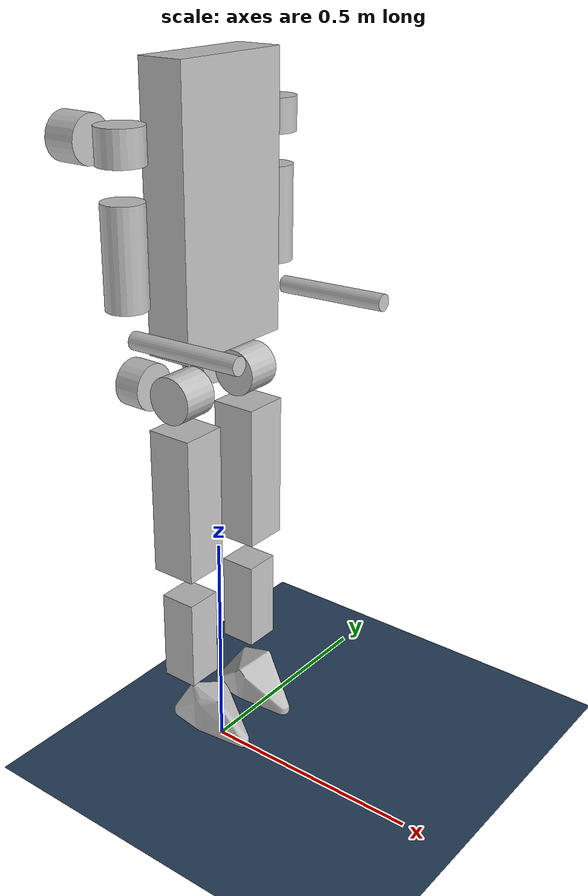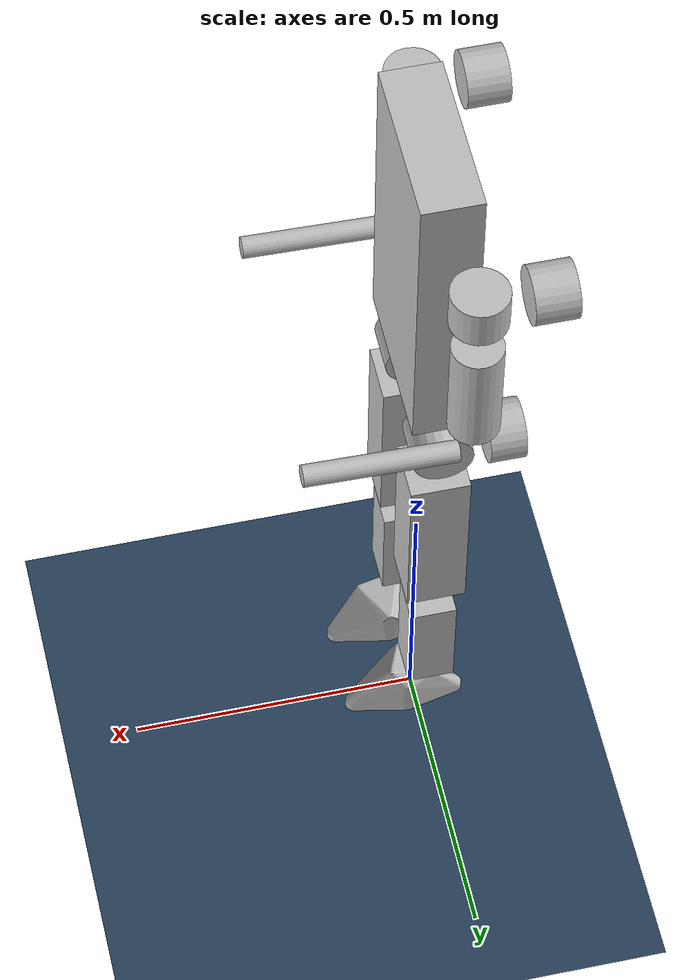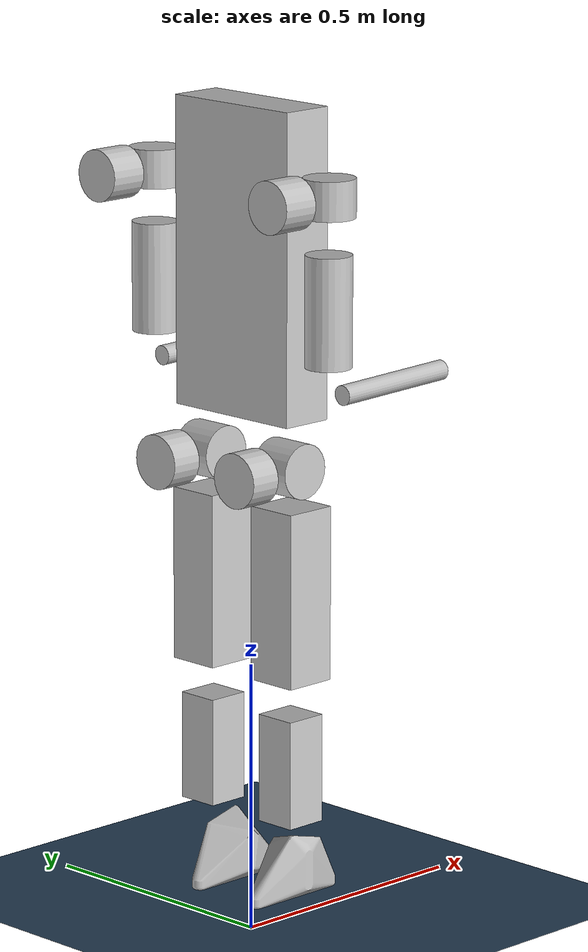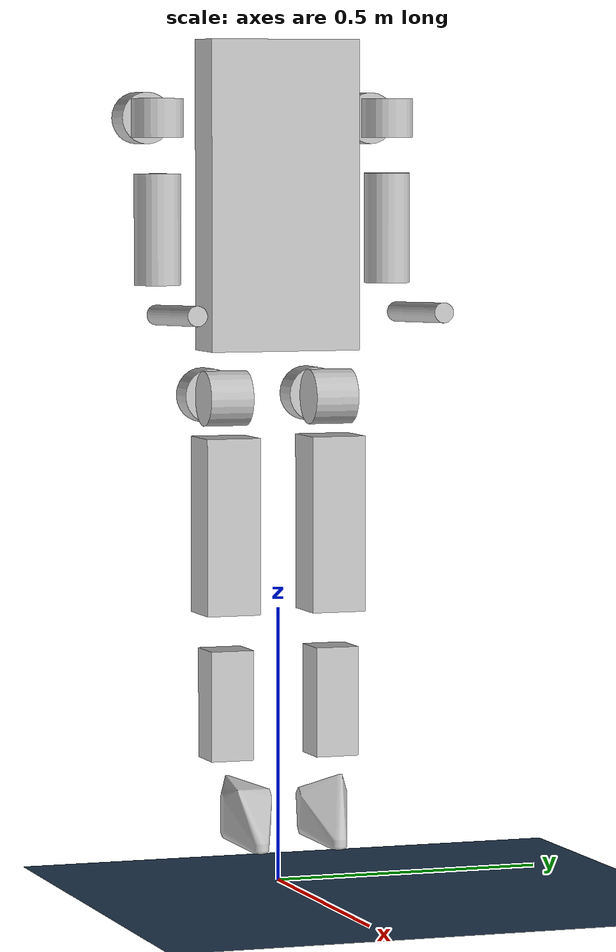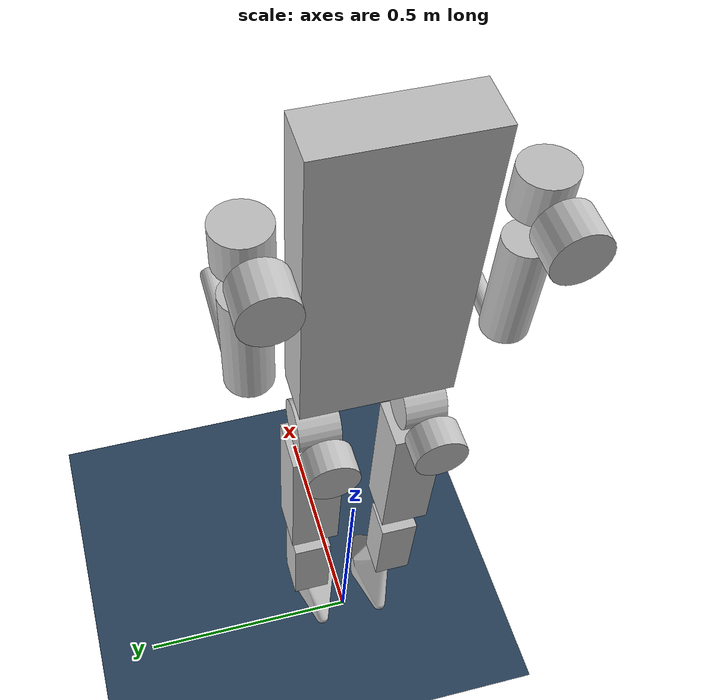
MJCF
<mujoco model="bhr8_fc2">
  <compiler angle="radian" meshdir="meshes/" autolimits="true"/>

    <asset>
    <!--设置地板-->
    <texture name="grid" type="2d" builtin="checker" width="512" height="512" rgb1=".1 .2 .3"
      rgb2=".2 .3 .4" />
    <material name="grid" texture="grid" texrepeat="1 1" texuniform="true" reflectance=".2" />
    <mesh name="rfoot" file="rfoot.stl"/>
    <mesh name="lfoot" file="lfoot.stl"/>
  </asset>

  <option timestep="0.001" integrator="RK4">
    <flag sensornoise="enable" />
  </option>
  <option impratio = "0.6"/>

  <visual>
    <map force="0.1" zfar="30" />
    <rgba haze="0.15 0.25 0.35 1" />
    <global offwidth="2560" offheight="1440" elevation="-20" azimuth="120" />
  </visual>

  <worldbody>
    <light name="main_light" diffuse="2 2 2" specular="0.5 0.5 0.5" pos="0 0 40" dir="0 0 -1"
      castshadow="true" />
    <!--辅助光源,四面八方-->
    <light name="aux_light1" diffuse=".8 .8 .8" pos=" 10 0 1" dir="-1 0 0" castshadow="false" />
    <light name="aux_light2" diffuse=".8 .8 .8" pos="-10 0 1" dir=" 1 0 0" castshadow="false" />
    <light name="aux_light3" diffuse=".8 .8 .8" pos="0  10 1" dir="0 -1 0" castshadow="false" />
    <light name="aux_light4" diffuse=".8 .8 .8" pos="0 -10 1" dir="0  1 0" castshadow="false" />
    <!--地板-->
    <geom name="floor" type="plane" size="0 0 0.05" material="grid"/>
    <body name="torso" pos="0 0 1">
      <freejoint name="root"/>
        <inertial pos="-0.01 0 0.303214317947705" quat="1 0 0 0" mass="23.1" diaginertia="0.71 0.60 0.24" />
      <site name="imu_site"  size="0.02" pos="0.0000000 0.00000000 0.0"/>
      <geom size="0.05 0.14 0.28" pos="0 0 0.25" type="box" rgba="0.752941 0.752941 0.752941 1"/>
      <geom size="0.047 0.035" pos="-0.13625 -0.21476 0.389" quat="0.707388 0 0.706825 0" type="cylinder" rgba="0.752941 0.752941 0.752941 1"/>
      <geom size="0.047 0.035" pos="-0.02525 -0.219 0.389" type="cylinder" rgba="0.752941 0.752941 0.752941 1"/>
      <geom size="0.042 0.1" pos="-0.02625 -0.219 0.189" type="cylinder" rgba="0.752941 0.752941 0.752941 1"/>
      <geom size="0.018 0.125" pos="0.123686 -0.229 0.0401399" quat="0.696707 0 -0.717356 0" type="cylinder" rgba="0.752941 0.752941 0.752941 1"/>
      <geom size="0.047 0.035" pos="-0.13625 0.21476 0.389" quat="0.707388 0 0.706825 0" type="cylinder" rgba="0.752941 0.752941 0.752941 1"/>
      <geom size="0.047 0.035" pos="-0.02525 0.219 0.389" type="cylinder" rgba="0.752941 0.752941 0.752941 1"/>
      <geom size="0.042 0.1" pos="-0.02625 0.219 0.189" type="cylinder" rgba="0.752941 0.752941 0.752941 1"/>
      <geom size="0.018 0.125" pos="0.123686 0.229 0.0401399" quat="0.696707 0 -0.717356 0" type="cylinder" rgba="0.752941 0.752941 0.752941 1"/>
      <body name="rhip1" pos="0 -0.1 0.02324">
        <inertial pos="-0.078509 0 -0.118031" quat="0.312936 0.634303 0.633788 0.313119" mass="2.38958" diaginertia="0.011987 0.0111943 0.00318774"/>
        <joint name="rhipYaw" pos="0 0 0" axis="0 0 1" range="-3.14 3.14"/>
        <geom size="0.05 0.03" pos="-0.11 0 -0.14" quat="0.707388 0 0.706825 0" type="cylinder" rgba="0.752941 0.752941 0.752941 1"/>
        <body name="rhip2" pos="-0.054 0 -0.13924">
          <inertial pos="0.051206 -0.00273 -0.000288" quat="-0.0508471 0.718896 0.0506336 0.691404" mass="2.50709" diaginertia="0.0040419 0.00361648 0.00344663"/>
          <joint name="rhipRoll" pos="0 0 0" axis="1 0 0" range="-3.14 3.14"/>
          <geom size="0.05 0.04" pos="0.05 0 0" quat="0.707388 0.706825 0 0" type="cylinder" rgba="0.752941 0.752941 0.752941 1"/>
          <body name="rthigh" pos="0.055 -0.0001 0">
            <inertial pos="0.005701 -0.002335 -0.170006" quat="0.999478 -0.00792791 -0.00348956 0.0311153" mass="3.09646" diaginertia="0.0430693 0.0409464 0.00582637"/>
            <joint name="rhipPitch" pos="0 0 0" axis="0 1 0" range="-3.14 3.14"/>
            <geom size="0.05 0.05 0.16" pos="0 0 -0.23" type="box" rgba="0.752941 0.752941 0.752941 1"/>
            <body name="rcalf" pos="0 0 -0.375">
              <inertial pos="0.003761 0 -0.143175" quat="0.99988 -0.000702889 -0.0153326 0.00193635" mass="1.91427" diaginertia="0.0176306 0.017018 0.00210037"/>
              <joint name="rknee" pos="0 0 0" axis="0 1 0" range="-3.14 3.14"/>
              <geom size="0.04 0.04 0.1" pos="0 0 -0.18" type="box" rgba="0.752941 0.752941 0.752941 1"/>
              <body name="rankle" pos="0 0 -0.35">
                <inertial pos="-0.025377 0.000124 0.003585" quat="0.513827 0.48578 0.48578 0.513827" mass="0.139581" diaginertia="0.000117 0.000111225 3.97754e-05"/>
                <joint name="rankle1" pos="0 0 0" axis="0 1 0" range="-3.14 3.14"/>
                <body name="rfoot" pos="0.031 0 0">
                  <inertial pos="-0.016884 0.000166 -0.054343" quat="-0.00139322 0.658253 -0.0050555 0.752779" mass="1.20445" diaginertia="0.00652476 0.00619614 0.0011981"/>
                  <joint name="rankle2" pos="0 0 0" axis="1 0 0" range="-3.14 3.14"/>
                  <geom type="mesh" rgba="0.752941 0.752941 0.752941 1" mesh="rfoot"/>
                  <site name="site_right_forcesensor" pos="0 0 0" />
                </body>
              </body>
            </body>
          </body>
        </body>
      </body>
      <body name="lhip1" pos="0 0.1 0.02324">
        <inertial pos="-0.078509 0 -0.118031" quat="0.312936 0.634303 0.633788 0.313119" mass="2.38958" diaginertia="0.011987 0.0111943 0.00318774"/>
        <joint name="lhipYaw" pos="0 0 0" axis="0 0 1" range="-3.14 3.14"/>
        <geom size="0.05 0.03" pos="-0.11 0 -0.14" quat="0.707388 0 0.706825 0" type="cylinder" rgba="0.752941 0.752941 0.752941 1"/>
        <body name="lhip2" pos="-0.054 0 -0.13924">
          <inertial pos="0.051206 0.002733 -0.00028" quat="0.0501181 0.718914 -0.051553 0.691371" mass="2.50722" diaginertia="0.00404191 0.00361648 0.00344661"/>
          <joint name="lhipRoll" pos="0 0 0" axis="1 0 0" range="-3.14 3.14"/>
          <geom size="0.05 0.04" pos="0.05 0 0" quat="0.707388 0.706825 0 0" type="cylinder" rgba="0.752941 0.752941 0.752941 1"/>
          <body name="lthigh" pos="0.055 0 0">
            <inertial pos="0.004804 0.002343 -0.169952" quat="0.99957 0.00788906 -0.00488581 -0.0278185" mass="3.09646" diaginertia="0.0430607 0.0408405 0.00572671"/>
            <joint name="lhipPitch" pos="0 0 0" axis="0 1 0" range="-3.14 3.14"/>
            <geom size="0.05 0.05 0.16" pos="0 0 -0.23" type="box" rgba="0.752941 0.752941 0.752941 1"/>
            <body name="lcalf" pos="0 0 -0.375">
              <inertial pos="0.003757 -0.00029 -0.143175" quat="0.999882 0.000728441 -0.0153344 0.000562778" mass="1.91427" diaginertia="0.0176306 0.017019 0.00210036"/>
              <joint name="lknee" pos="0 0 0" axis="0 1 0" range="-3.14 3.14"/>
              <geom size="0.04 0.04 0.1" pos="0 0 -0.18" type="box" rgba="0.752941 0.752941 0.752941 1"/>
              <body name="lankle" pos="0 0 -0.35">
                <inertial pos="-0.025377 0.000124 0.003585" quat="0.513827 0.48578 0.48578 0.513827" mass="0.139581" diaginertia="0.000117 0.000111225 3.97754e-05"/>
                <joint name="lankle1" pos="0 0 0" axis="0 1 0" range="-3.14 3.14"/>
                <body name="lfoot" pos="0.031 0 0">
                  <inertial pos="-0.016876 -0.000173 -0.054342" quat="0.0024359 0.658246 0.00581857 0.752776" mass="1.20434" diaginertia="0.00652477 0.00619511 0.00119811"/>
                  <joint name="lankle2" pos="0 0 0" axis="1 0 0" range="-3.14 3.14"/>
                  <geom type="mesh" rgba="0.752941 0.752941 0.752941 1" mesh="lfoot"/>
                  <site name="site_left_forcesensor" pos="0 0 0" />
                </body>
              </body>
            </body>
          </body>
        </body>
      </body>
    </body>
  </worldbody>
  <sensor>
    <force name ="right_forcesensor" site="site_right_forcesensor" cutoff = "2000.0" />
    <torque name ="right_torquesensor" site="site_right_forcesensor" cutoff = "2000.0" />
    <force name ="left_forcesensor" site="site_left_forcesensor" cutoff = "2000.0" />
    <torque name ="left_torquesensor" site="site_left_forcesensor" cutoff = "2000.0" />
		<gyro		       name="imu_gyro"	  		  site="imu_site" />
		<accelerometer name="imu_acc"		    site="imu_site" />
    <framepos name="imu_pos" objtype="site" objname="imu_site" />
    <framelinvel name="imu_linvel" objtype="site" objname="imu_site" />
	</sensor>

  <actuator>
    <motor name="rhipYaw" joint="rhipYaw" ctrlrange="-200 200" />
    <motor name="rhipRoll" joint="rhipRoll" ctrlrange="-200 200" />
    <motor name="rhipPitch" joint="rhipPitch" ctrlrange="-200 200" />
    <motor name="rknee" joint="rknee" ctrlrange="-200 200" />
    <motor name="rankle1" joint="rankle1" ctrlrange="-200 200" />
    <motor name="rankle2" joint="rankle2" ctrlrange="-200 200" />
    <motor name="lhipYaw" joint="lhipYaw" ctrlrange="-200 200" />
    <motor name="lhipRoll" joint="lhipRoll" ctrlrange="-200 200" />
    <motor name="lhipPitch" joint="lhipPitch" ctrlrange="-200 200" />
    <motor name="lknee" joint="lknee" ctrlrange="-200 200" />
    <motor name="lankle1" joint="lankle1" ctrlrange="-200 200" />
    <motor name="lankle2" joint="lankle2" ctrlrange="-200 200" />
  </actuator>
</mujoco>
